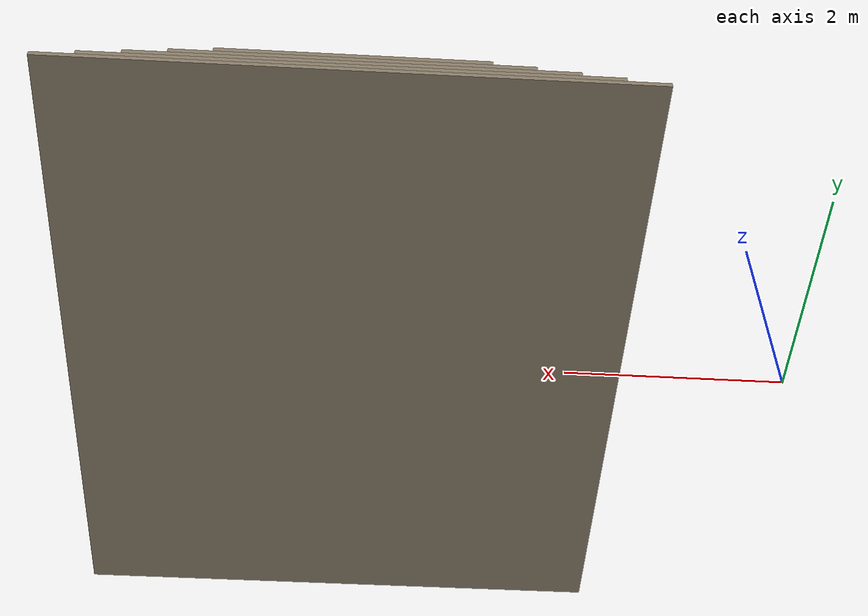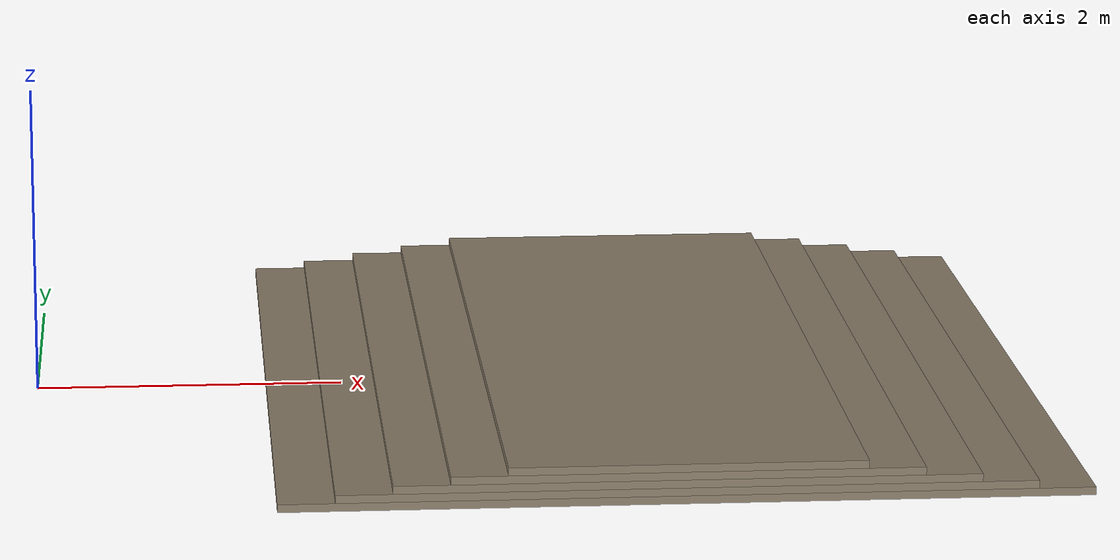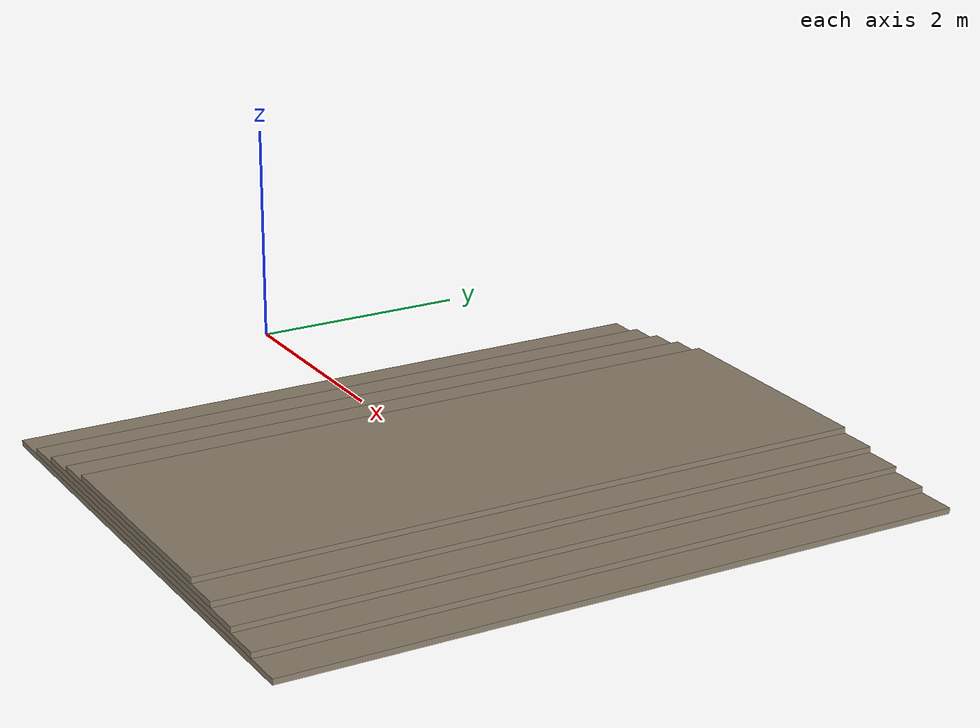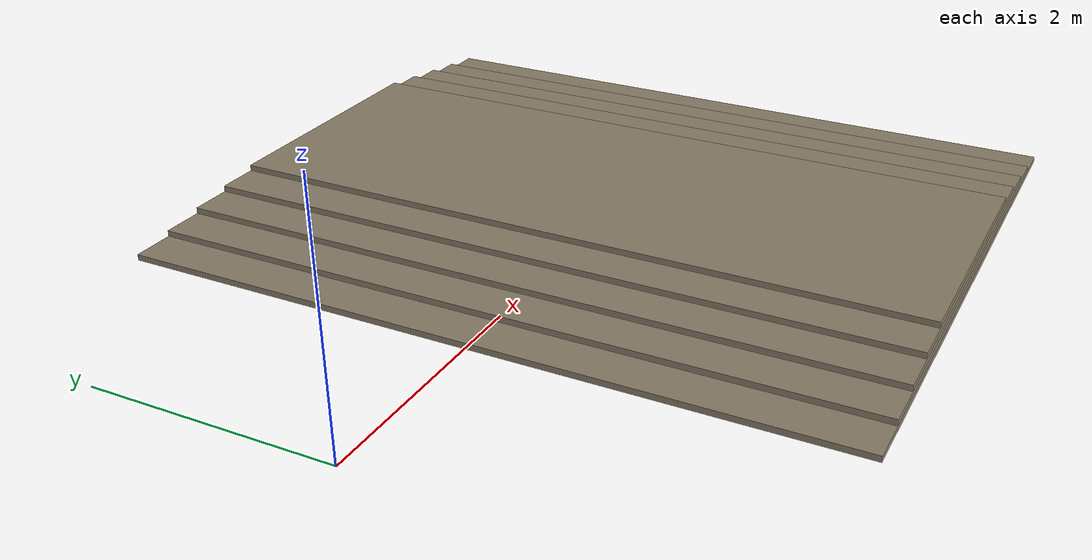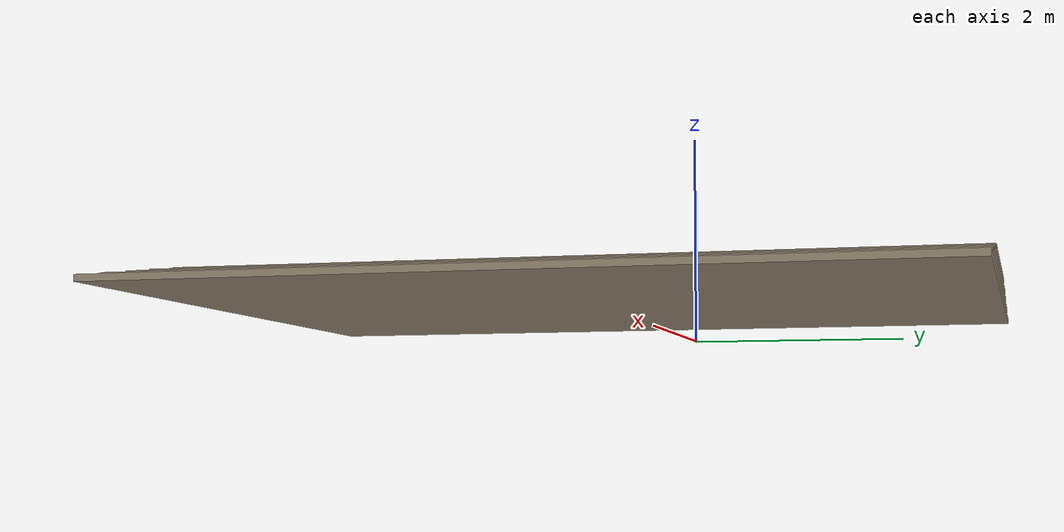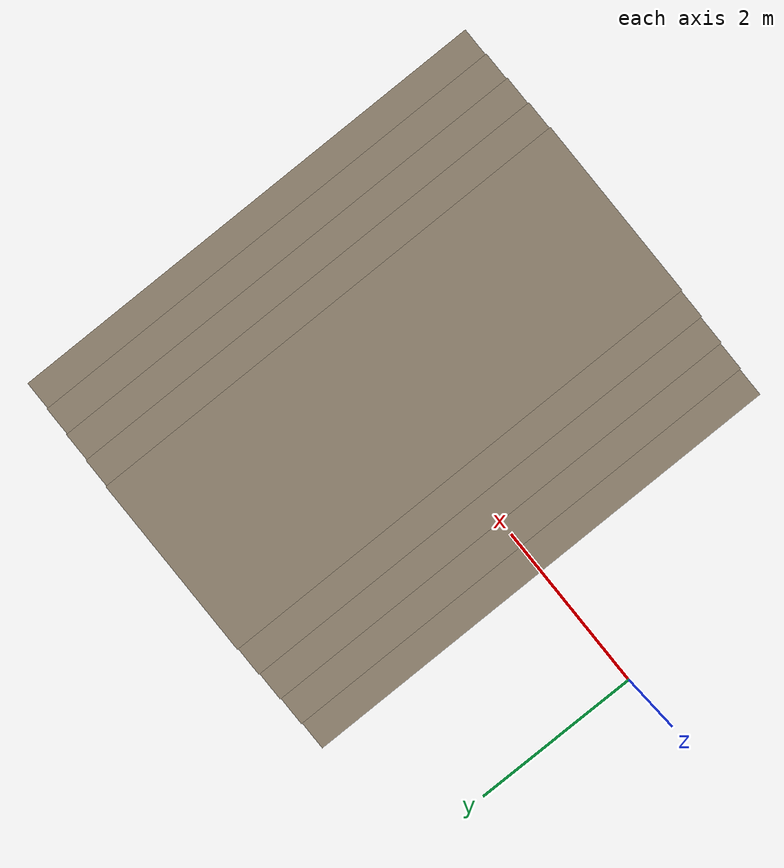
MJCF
<mujoco model="terrain stairs_5cm">
  <!-- 5 cm stairs up and down (5 steps each way, 35 cm treads) (scripts/make_terrain_benchmark.py) -->
  <asset>
    <material name="terrain" rgba="0.55 0.5 0.42 1"/>
  </asset>
  <worldbody>
    <geom name="stair1" type="box" pos="4.0000 0.0000 0.0250" size="2.5000 3.0000 0.0250" material="terrain" contype="1" conaffinity="1" condim="3" friction="1.0 0.5 0.1"/>
    <geom name="stair2" type="box" pos="4.0000 0.0000 0.0750" size="2.1500 3.0000 0.0250" material="terrain" contype="1" conaffinity="1" condim="3" friction="1.0 0.5 0.1"/>
    <geom name="stair3" type="box" pos="4.0000 0.0000 0.1250" size="1.8000 3.0000 0.0250" material="terrain" contype="1" conaffinity="1" condim="3" friction="1.0 0.5 0.1"/>
    <geom name="stair4" type="box" pos="4.0000 0.0000 0.1750" size="1.4500 3.0000 0.0250" material="terrain" contype="1" conaffinity="1" condim="3" friction="1.0 0.5 0.1"/>
    <geom name="stair5" type="box" pos="4.0000 0.0000 0.2250" size="1.1000 3.0000 0.0250" material="terrain" contype="1" conaffinity="1" condim="3" friction="1.0 0.5 0.1"/>
  </worldbody>
</mujoco>
